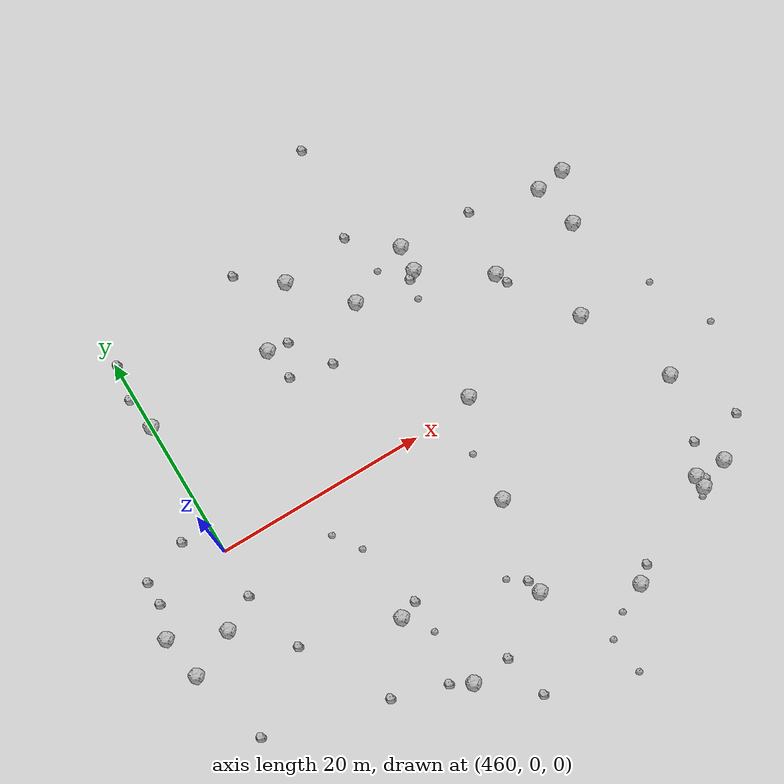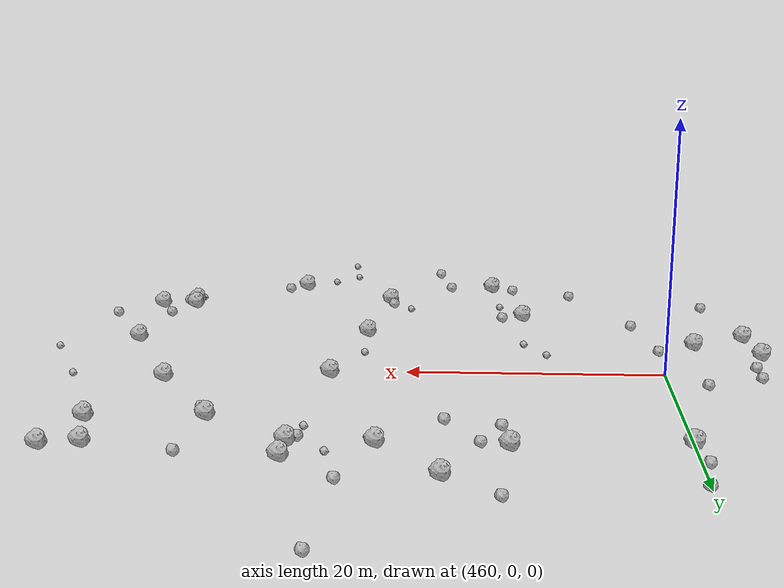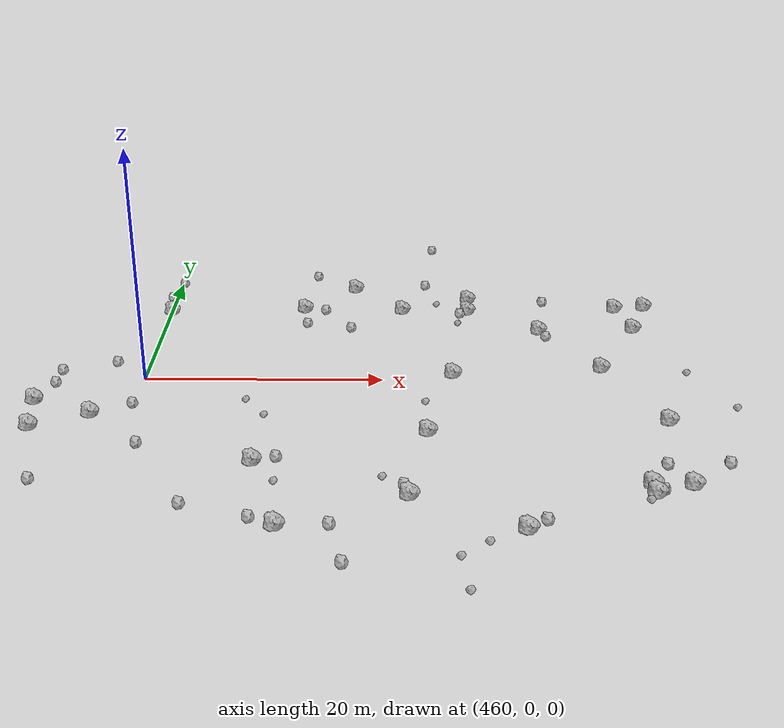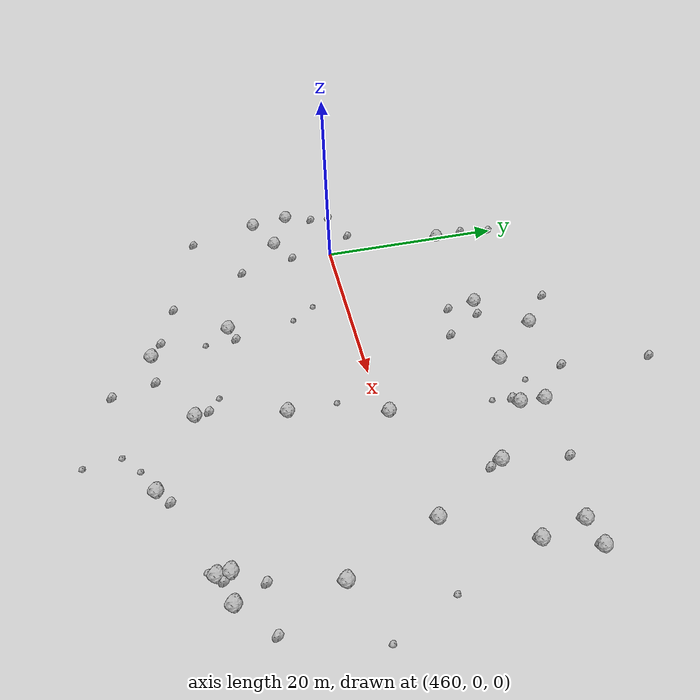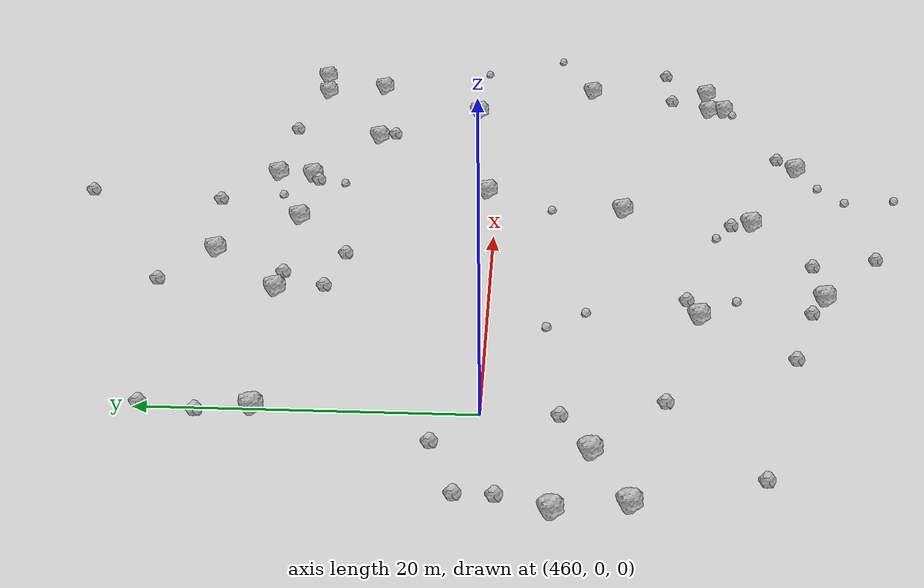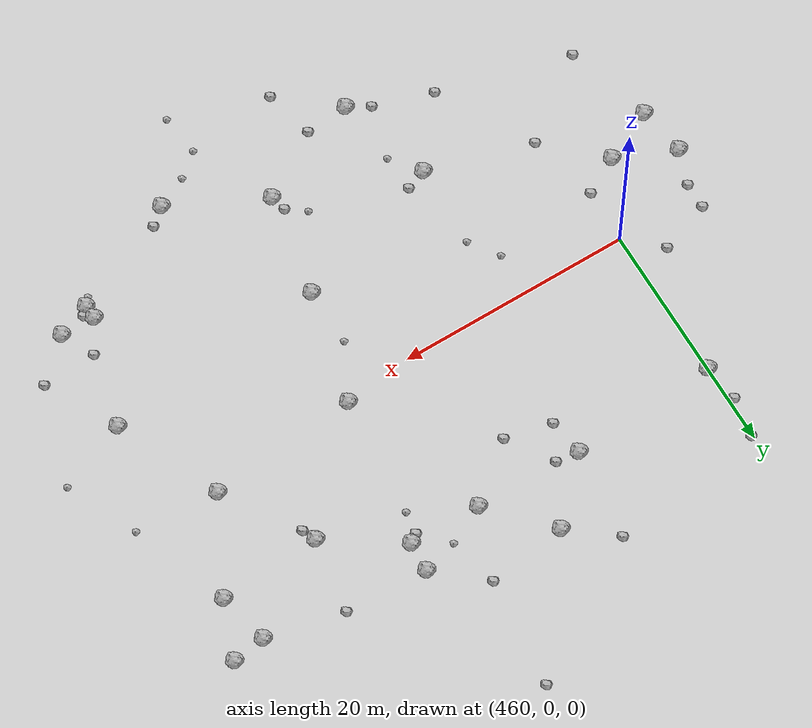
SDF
<sdf version="1.6">
 <world name="default">
  <include><uri>model://sun</uri></include>
  <model name="rock1_12_3">
   <include><uri>model://rock1</uri><pose>470.4370190545266 -13.207214200657795 0.5 0 0 0</pose></include>
  </model>
  <model name="rock1_12_4">
   <include><uri>model://rock1</uri><pose>490.0358488968562 -21.577581393953135 0.5 0 0 0</pose></include>
  </model>
  <model name="rock1_12_5">
   <include><uri>model://rock1</uri><pose>487.9884271835015 15.971078467967956 0.5 0 0 0</pose></include>
  </model>
  <model name="rock1_12_6">
   <include><uri>model://rock1</uri><pose>451.7922385898078 -4.105780613008822 0.5 0 0 0</pose></include>
  </model>
  <model name="rock1_12_7">
   <include><uri>model://rock1</uri><pose>472.8574513572612 -21.34512746380121 0.5 0 0 0</pose></include>
  </model>
  <model name="rock1_12_8">
   <include><uri>model://rock1</uri><pose>452.47263909816263 -8.272639813525796 0.5 0 0 0</pose></include>
  </model>
  <model name="rock1_12_9">
   <include><uri>model://rock1</uri><pose>502.5466707994452 -7.023724038134567 0.5 0 0 0</pose></include>
  </model>
  <model name="rock1_12_10">
   <include><uri>model://rock1</uri><pose>472.56688474834937 13.798924398167323 0.5 0 0 0</pose></include>
  </model>
  <model name="rock1_12_11">
   <include><uri>model://rock1</uri><pose>502.70862992643276 9.704953593760969 0.5 0 0 0</pose></include>
  </model>
  <model name="rock1_12_12">
   <include><uri>model://rock1</uri><pose>502.4378267133972 -16.082163322744947 0.5 0 0 0</pose></include>
  </model>
  <model name="rock1_12_13">
   <include><uri>model://rock1</uri><pose>487.83704331850765 13.440613577651078 0.5 0 0 0</pose></include>
  </model>
  <model name="rock1_12_14">
   <include><uri>model://rock1</uri><pose>501.7519290535363 14.120410742421072 0.5 0 0 0</pose></include>
  </model>
  <model name="rock1_12_15">
   <include><uri>model://rock1</uri><pose>499.5693320411986 -17.193778226714315 0.5 0 0 0</pose></include>
  </model>
  <model name="rock1_12_16">
   <include><uri>model://rock1</uri><pose>460.0653901005966 13.14273308457345 0.5 0 0 0</pose></include>
  </model>
  <model name="rock1_12_17">
   <include><uri>model://rock1</uri><pose>456.81947964613323 -6.261401217674468 0.5 0 0 0</pose></include>
  </model>
  <model name="rock1_12_18">
   <include><uri>model://rock1</uri><pose>498.6166283878488 1.8730545827477556 0.5 0 0 0</pose></include>
  </model>
  <model name="rock1_12_19">
   <include><uri>model://rock1</uri><pose>483.58411051984626 -8.839126236628218 0.5 0 0 0</pose></include>
  </model>
  <model name="rock1_12_20">
   <include><uri>model://rock1</uri><pose>504.58093848393173 14.540503111252619 0.5 0 0 0</pose></include>
  </model>
  <model name="rock1_12_21">
   <include><uri>model://rock1</uri><pose>481.73519704550245 13.551327024887136 0.5 0 0 0</pose></include>
  </model>
  <model name="rock1_12_22">
   <include><uri>model://rock1</uri><pose>482.0503834165071 -17.590537678923646 0.5 0 0 0</pose></include>
  </model>
  <model name="rock1_12_23">
   <include><uri>model://rock1</uri><pose>499.4987121499332 -16.01925277515694 0.5 0 0 0</pose></include>
  </model>
  <model name="rock1_12_24">
   <include><uri>model://rock1</uri><pose>477.2125319310768 18.520068157471194 0.5 0 0 0</pose></include>
  </model>
  <model name="rock1_12_25">
   <include><uri>model://rock1</uri><pose>494.07034728998195 9.246348281654967 0.5 0 0 0</pose></include>
  </model>
  <model name="rock1_12_26">
   <include><uri>model://rock1</uri><pose>485.9189814459373 0.7045920125705827 0.5 0 0 0</pose></include>
  </model>
  <model name="rock2_12_0">
   <include><uri>model://rock2</uri><pose>476.54002306768626 -21.065776086597424 0.3 0 0 0</pose></include>
  </model>
  <model name="rock2_12_1">
   <include><uri>model://rock2</uri><pose>459.5781651883785 16.359067309592263 0.3 0 0 0</pose></include>
  </model>
  <model name="rock2_12_2">
   <include><uri>model://rock2</uri><pose>452.82172540187395 1.1257681341266554 0.3 0 0 0</pose></include>
  </model>
  <model name="rock2_12_3">
   <include><uri>model://rock2</uri><pose>477.561189160308 -25.34928841662978 0.3 0 0 0</pose></include>
  </model>
  <model name="rock2_12_4">
   <include><uri>model://rock2</uri><pose>505.74636502029426 -13.071517561877094 0.3 0 0 0</pose></include>
  </model>
  <model name="rock2_12_5">
   <include><uri>model://rock2</uri><pose>459.8647764169493 -4.543827637667 0.3 0 0 0</pose></include>
  </model>
  <model name="rock2_12_6">
   <include><uri>model://rock2</uri><pose>483.9672649587124 19.443882320901835 0.3 0 0 0</pose></include>
  </model>
  <model name="rock2_12_7">
   <include><uri>model://rock2</uri><pose>481.6736072037552 -16.21365278984398 0.3 0 0 0</pose></include>
  </model>
  <model name="rock2_12_8">
   <include><uri>model://rock2</uri><pose>494.5496043450688 8.086827057548511 0.3 0 0 0</pose></include>
  </model>
  <model name="rock2_12_9">
   <include><uri>model://rock2</uri><pose>470.96234894729145 -20.315102910783896 0.3 0 0 0</pose></include>
  </model>
  <model name="rock2_12_10">
   <include><uri>model://rock2</uri><pose>465.9398083993371 -18.727280127571333 0.3 0 0 0</pose></include>
  </model>
  <model name="rock2_12_11">
   <include><uri>model://rock2</uri><pose>495.05602081915936 15.617635733833417 0.3 0 0 0</pose></include>
  </model>
  <model name="rock2_12_12">
   <include><uri>model://rock2</uri><pose>452.79389789174115 -1.096322615877444 0.3 0 0 0</pose></include>
  </model>
  <model name="rock2_12_13">
   <include><uri>model://rock2</uri><pose>461.347563958092 -10.66000018395561 0.3 0 0 0</pose></include>
  </model>
  <model name="rock2_12_14">
   <include><uri>model://rock2</uri><pose>454.576412241579 -15.740071989456634 0.3 0 0 0</pose></include>
  </model>
  <model name="rock2_12_15">
   <include><uri>model://rock2</uri><pose>491.43412221967725 -20.396514467593665 0.3 0 0 0</pose></include>
  </model>
  <model name="rock2_12_16">
   <include><uri>model://rock2</uri><pose>473.35186081390924 21.599797801598612 0.3 0 0 0</pose></include>
  </model>
  <model name="rock2_12_17">
   <include><uri>model://rock2</uri><pose>487.0703493798013 12.932963038221587 0.3 0 0 0</pose></include>
  </model>
  <model name="rock2_12_18">
   <include><uri>model://rock2</uri><pose>500.1316781812608 -16.61069465234027 0.3 0 0 0</pose></include>
  </model>
  <model name="rock2_12_19">
   <include><uri>model://rock2</uri><pose>460.1703722879845 19.76174811269579 0.3 0 0 0</pose></include>
  </model>
  <model name="rock2_12_20">
   <include><uri>model://rock2</uri><pose>472.16468962584077 -12.555740733550667 0.3 0 0 0</pose></include>
  </model>
  <model name="rock2_12_21">
   <include><uri>model://rock2</uri><pose>501.0779700679071 -13.287758657735516 0.3 0 0 0</pose></include>
  </model>
  <model name="rock2_12_22">
   <include><uri>model://rock2</uri><pose>477.0092689228583 9.757984970074112 0.3 0 0 0</pose></include>
  </model>
  <model name="rock2_12_23">
   <include><uri>model://rock2</uri><pose>472.9788419210704 10.69509810220967 0.3 0 0 0</pose></include>
  </model>
  <model name="rock2_12_24">
   <include><uri>model://rock2</uri><pose>457.1728096907478 2.687433852239593 0.3 0 0 0</pose></include>
  </model>
  <model name="rock2_12_25">
   <include><uri>model://rock2</uri><pose>484.9204409549748 28.795267893690223 0.3 0 0 0</pose></include>
  </model>
  <model name="rock2_12_26">
   <include><uri>model://rock2</uri><pose>474.5094580298557 13.562991865231197 0.3 0 0 0</pose></include>
  </model>
  <model name="rock3_12_0">
   <include><uri>model://rock3</uri><pose>485.7472677631356 -28.031391076445605 0.2 0 0 0</pose></include>
  </model>
  <model name="rock3_12_1">
   <include><uri>model://rock3</uri><pose>468.8869620419313 -3.7236182874611714 0.2 0 0 0</pose></include>
  </model>
  <model name="rock3_12_2">
   <include><uri>model://rock3</uri><pose>487.33158534320364 -22.881754274173083 0.2 0 0 0</pose></include>
  </model>
  <model name="rock3_12_3">
   <include><uri>model://rock3</uri><pose>498.9892710463933 -17.875261719519173 0.2 0 0 0</pose></include>
  </model>
  <model name="rock3_12_4">
   <include><uri>model://rock3</uri><pose>484.9393161734596 15.125131151984782 0.2 0 0 0</pose></include>
  </model>
  <model name="rock3_12_5">
   <include><uri>model://rock3</uri><pose>480.0794608767336 -15.100838853356553 0.2 0 0 0</pose></include>
  </model>
  <model name="rock3_12_6">
   <include><uri>model://rock3</uri><pose>505.72230204000414 1.3252190392821461 0.2 0 0 0</pose></include>
  </model>
  <model name="rock3_12_7">
   <include><uri>model://rock3</uri><pose>470.5935463304594 -6.185098096164516 0.2 0 0 0</pose></include>
  </model>
  <model name="rock3_12_8">
   <include><uri>model://rock3</uri><pose>508.45973251179504 -4.6981249014479545 0.2 0 0 0</pose></include>
  </model>
  <model name="rock3_12_9">
   <include><uri>model://rock3</uri><pose>486.7781274610445 10.956383381871042 0.2 0 0 0</pose></include>
  </model>
  <model name="rock3_12_10">
   <include><uri>model://rock3</uri><pose>483.46822831983695 -3.948488527976558 0.2 0 0 0</pose></include>
  </model>
  <model name="rock3_12_11">
   <include><uri>model://rock3</uri><pose>485.33507380541676 -24.504426949419965 0.2 0 0 0</pose></include>
  </model>
  <model name="rock3_12_12">
   <include><uri>model://rock3</uri><pose>472.24552683244474 -15.761998265754729 0.2 0 0 0</pose></include>
  </model>
 </world>
</sdf>
